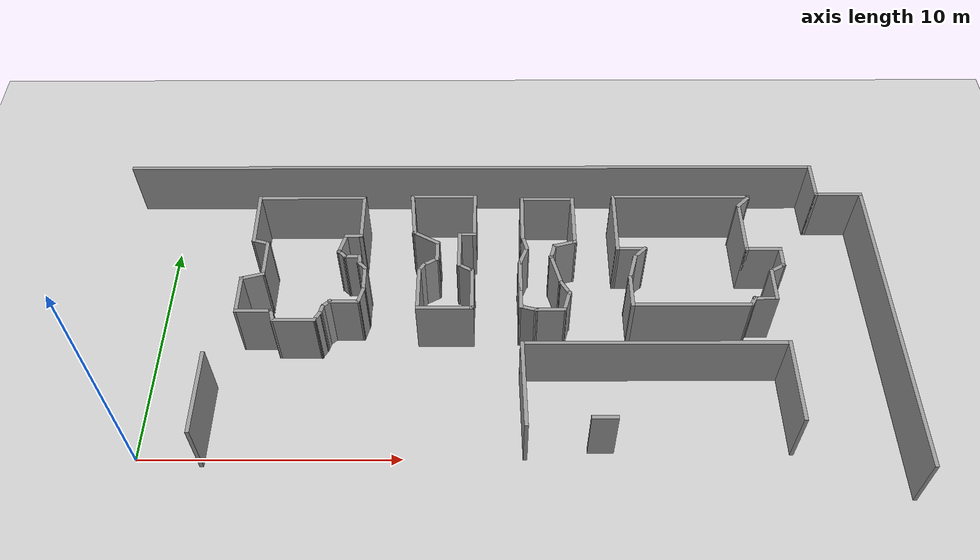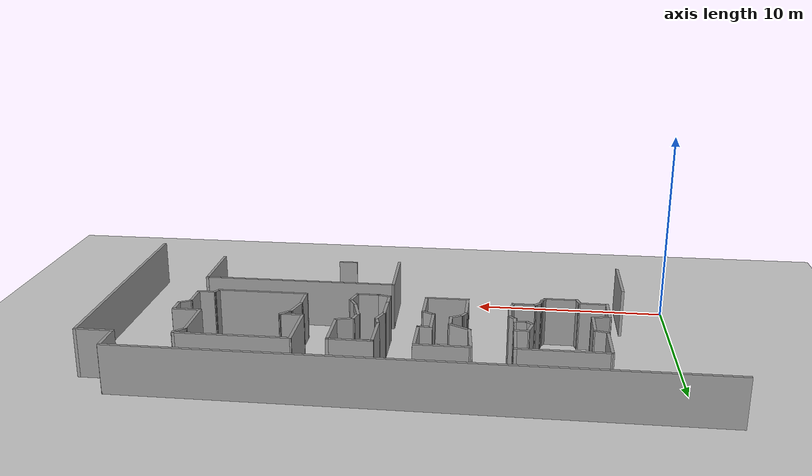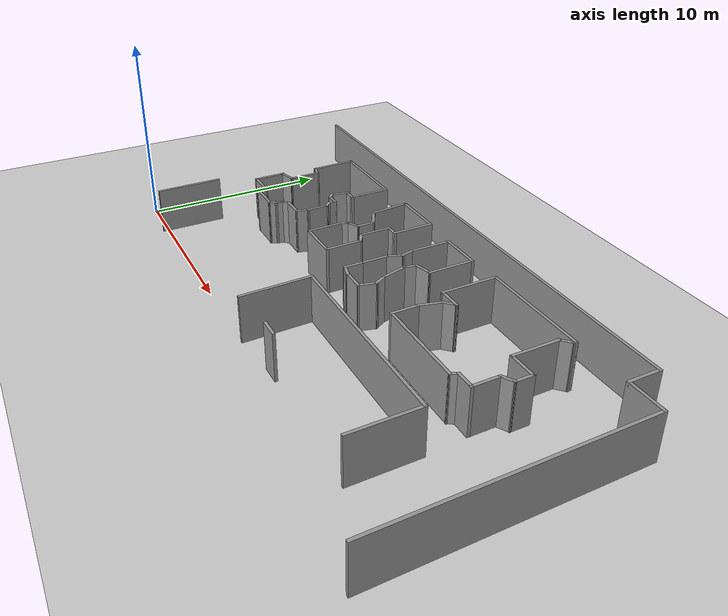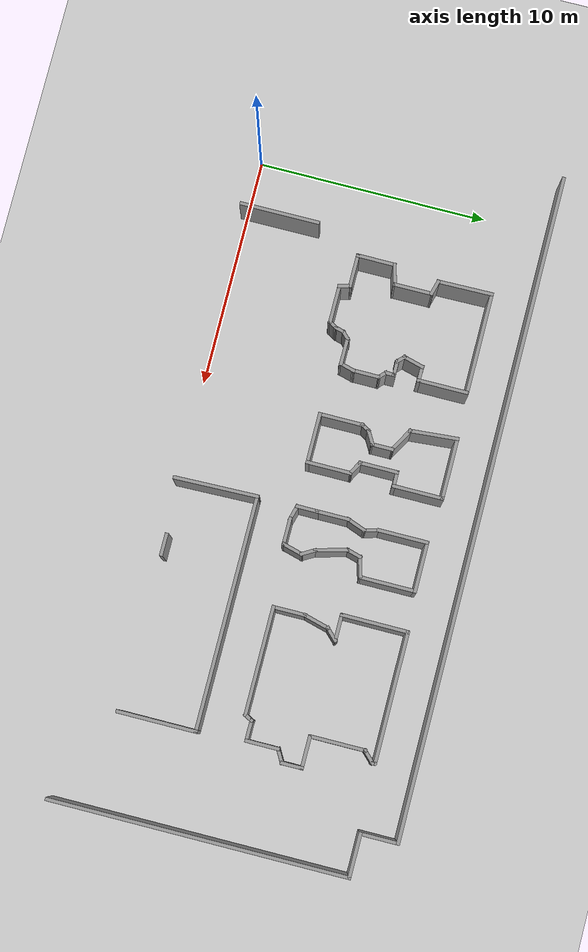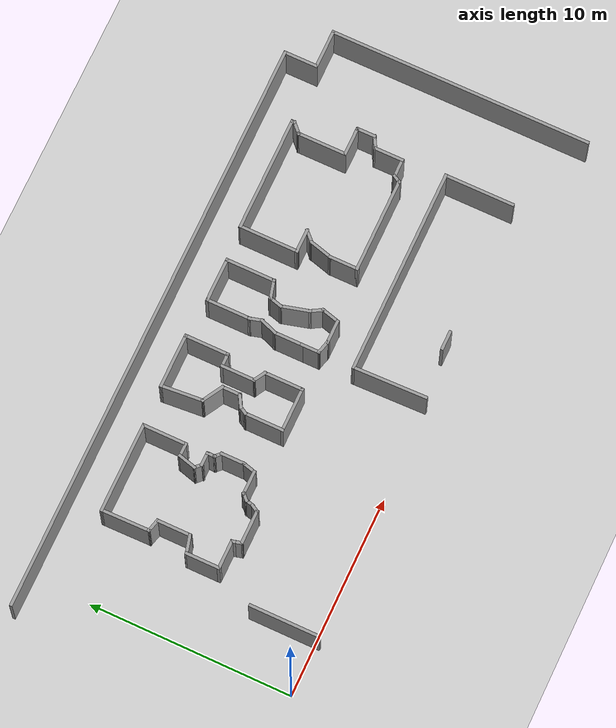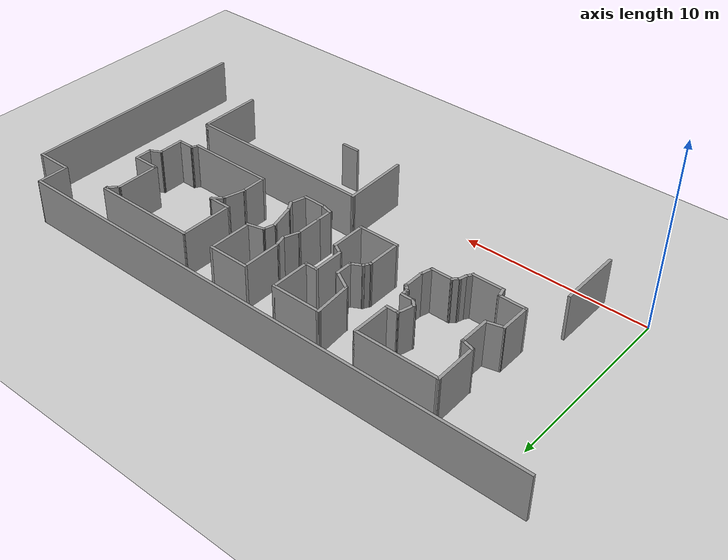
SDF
<sdf version="1.7">
 <world name="default">
  <model name="ground_plane">
   <static>1</static>
   <link name="link">
    <collision name="collision">
     <geometry><plane><normal>0 0 1</normal><size>100 100</size></plane></geometry>
     <surface>
      <contact><collide_bitmask>65535</collide_bitmask></contact>
      <friction><ode><mu>100</mu><mu2>50</mu2></ode></friction>
     </surface>
    </collision>
    <visual name="visual">
     <cast_shadows>0</cast_shadows>
     <geometry><plane><normal>0 0 1</normal><size>100 100</size></plane></geometry>
     <material>
      <script><uri>file://media/materials/scripts/gazebo.material</uri><name>Gazebo/Grey</name></script>
     </material>
    </visual>
   </link>
  </model>
  <model name="latest_world">
   <pose>-1.4911 -0.096187 0 0 -0 0</pose>
   <link name="Wall_2">
    <collision name="Wall_2_Collision">
     <geometry><box><size>29 0.15 2.5</size></box></geometry>
     <pose>0 0 1.25 0 -0 0</pose>
    </collision>
    <visual name="Wall_2_Visual">
     <pose>0 0 1.25 0 -0 0</pose>
     <geometry><box><size>29 0.15 2.5</size></box></geometry>
     <material>
      <script><uri>file://media/materials/scripts/gazebo.material</uri><name>Gazebo/Grey</name></script>
      <ambient>1 1 1 1</ambient>
     </material>
     <meta><layer>0</layer></meta>
    </visual>
    <pose>13.9801 12.9157 0 0 -0 0</pose>
   </link>
   <link name="Wall_3">
    <collision name="Wall_3_Collision">
     <geometry><box><size>1.75 0.15 2.5</size></box></geometry>
     <pose>0 0 1.25 0 -0 0</pose>
    </collision>
    <visual name="Wall_3_Visual">
     <pose>0 0 1.25 0 -0 0</pose>
     <geometry><box><size>1.75 0.15 2.5</size></box></geometry>
     <material>
      <script><uri>file://media/materials/scripts/gazebo.material</uri><name>Gazebo/Grey</name></script>
      <ambient>1 1 1 1</ambient>
     </material>
     <meta><layer>0</layer></meta>
    </visual>
    <pose>28.4051 12.1157 0 0 -0 -1.5708</pose>
   </link>
   <link name="Wall_305">
    <collision name="Wall_305_Collision">
     <geometry><box><size>3.5 0.15 2.5</size></box></geometry>
     <pose>0 0 1.25 0 -0 0</pose>
    </collision>
    <visual name="Wall_305_Visual">
     <pose>0 0 1.25 0 -0 0</pose>
     <geometry><box><size>3.5 0.15 2.5</size></box></geometry>
     <material>
      <script><uri>file://media/materials/scripts/gazebo.material</uri><name>Gazebo/Grey</name></script>
      <ambient>1 1 1 1</ambient>
     </material>
     <meta><layer>0</layer></meta>
    </visual>
    <pose>3.99517 1.57788 0 0 -0 1.5708</pose>
   </link>
   <link name="Wall_319">
    <collision name="Wall_319_Collision">
     <geometry><box><size>4.5 0.15 2.5</size></box></geometry>
     <pose>0 0 1.25 0 -0 0</pose>
    </collision>
    <visual name="Wall_319_Visual">
     <pose>0 0 1.25 0 -0 0</pose>
     <geometry><box><size>4.5 0.15 2.5</size></box></geometry>
     <material>
      <script><uri>file://media/materials/scripts/gazebo.material</uri><name>Gazebo/Grey</name></script>
      <ambient>1 1 1 1</ambient>
     </material>
     <meta><layer>0</layer></meta>
    </visual>
    <pose>7.33934 11.1509 0 0 -0 0</pose>
   </link>
   <link name="Wall_320">
    <collision name="Wall_320_Collision">
     <geometry><box><size>2.25 0.15 2.5</size></box></geometry>
     <pose>0 0 1.25 0 -0 0</pose>
    </collision>
    <visual name="Wall_320_Visual">
     <pose>0 0 1.25 0 -0 0</pose>
     <geometry><box><size>2.25 0.15 2.5</size></box></geometry>
     <material>
      <script><uri>file://media/materials/scripts/gazebo.material</uri><name>Gazebo/Grey</name></script>
      <ambient>1 1 1 1</ambient>
     </material>
     <meta><layer>0</layer></meta>
    </visual>
    <pose>9.51434 10.1009 0 0 -0 -1.5708</pose>
   </link>
   <link name="Wall_321">
    <collision name="Wall_321_Collision">
     <geometry><box><size>0.75 0.15 2.5</size></box></geometry>
     <pose>0 0 1.25 0 -0 0</pose>
    </collision>
    <visual name="Wall_321_Visual">
     <pose>0 0 1.25 0 -0 0</pose>
     <geometry><box><size>0.75 0.15 2.5</size></box></geometry>
     <material>
      <script><uri>file://media/materials/scripts/gazebo.material</uri><name>Gazebo/Grey</name></script>
      <ambient>1 1 1 1</ambient>
     </material>
     <meta><layer>0</layer></meta>
    </visual>
    <pose>9.21434 9.05093 0 0 -0 3.14159</pose>
   </link>
   <link name="Wall_322">
    <collision name="Wall_322_Collision">
     <geometry><box><size>1 0.15 2.5</size></box></geometry>
     <pose>0 0 1.25 0 -0 0</pose>
    </collision>
    <visual name="Wall_322_Visual">
     <pose>0 0 1.25 0 -0 0</pose>
     <geometry><box><size>1 0.15 2.5</size></box></geometry>
     <material>
      <script><uri>file://media/materials/scripts/gazebo.material</uri><name>Gazebo/Grey</name></script>
      <ambient>1 1 1 1</ambient>
     </material>
     <meta><layer>0</layer></meta>
    </visual>
    <pose>8.80434 8.64041 0 0 -0 -1.8326</pose>
   </link>
   <link name="Wall_323">
    <collision name="Wall_323_Collision">
     <geometry><box><size>0.5 0.15 2.5</size></box></geometry>
     <pose>0 0 1.25 0 -0 0</pose>
    </collision>
    <visual name="Wall_323_Visual">
     <pose>0 0 1.25 0 -0 0</pose>
     <geometry><box><size>0.5 0.15 2.5</size></box></geometry>
     <material>
      <script><uri>file://media/materials/scripts/gazebo.material</uri><name>Gazebo/Grey</name></script>
      <ambient>1 1 1 1</ambient>
     </material>
     <meta><layer>0</layer></meta>
    </visual>
    <pose>8.81809 8.10615 0 0 -0 -0.785398</pose>
   </link>
   <link name="Wall_324">
    <collision name="Wall_324_Collision">
     <geometry><box><size>0.75 0.15 2.5</size></box></geometry>
     <pose>0 0 1.25 0 -0 0</pose>
    </collision>
    <visual name="Wall_324_Visual">
     <pose>0 0 1.25 0 -0 0</pose>
     <geometry><box><size>0.75 0.15 2.5</size></box></geometry>
     <material>
      <script><uri>file://media/materials/scripts/gazebo.material</uri><name>Gazebo/Grey</name></script>
      <ambient>1 1 1 1</ambient>
     </material>
     <meta><layer>0</layer></meta>
    </visual>
    <pose>9.24183 7.98241 0 0 -0 0</pose>
   </link>
   <link name="Wall_325">
    <collision name="Wall_325_Collision">
     <geometry><box><size>0.5 0.15 2.5</size></box></geometry>
     <pose>0 0 1.25 0 -0 0</pose>
    </collision>
    <visual name="Wall_325_Visual">
     <pose>0 0 1.25 0 -0 0</pose>
     <geometry><box><size>0.5 0.15 2.5</size></box></geometry>
     <material>
      <script><uri>file://media/materials/scripts/gazebo.material</uri><name>Gazebo/Grey</name></script>
      <ambient>1 1 1 1</ambient>
     </material>
     <meta><layer>0</layer></meta>
    </visual>
    <pose>9.54183 7.80741 0 0 -0 -1.5708</pose>
   </link>
   <link name="Wall_326">
    <collision name="Wall_326_Collision">
     <geometry><box><size>0.5 0.15 2.5</size></box></geometry>
     <pose>0 0 1.25 0 -0 0</pose>
    </collision>
    <visual name="Wall_326_Visual">
     <pose>0 0 1.25 0 -0 0</pose>
     <geometry><box><size>0.5 0.15 2.5</size></box></geometry>
     <material>
      <script><uri>file://media/materials/scripts/gazebo.material</uri><name>Gazebo/Grey</name></script>
      <ambient>1 1 1 1</ambient>
     </material>
     <meta><layer>0</layer></meta>
    </visual>
    <pose>9.66557 7.50866 0 0 -0 -0.785398</pose>
   </link>
   <link name="Wall_327">
    <collision name="Wall_327_Collision">
     <geometry><box><size>1.25 0.15 2.5</size></box></geometry>
     <pose>0 0 1.25 0 -0 0</pose>
    </collision>
    <visual name="Wall_327_Visual">
     <pose>0 0 1.25 0 -0 0</pose>
     <geometry><box><size>1.25 0.15 2.5</size></box></geometry>
     <material>
      <script><uri>file://media/materials/scripts/gazebo.material</uri><name>Gazebo/Grey</name></script>
      <ambient>1 1 1 1</ambient>
     </material>
     <meta><layer>0</layer></meta>
    </visual>
    <pose>9.78932 6.83492 0 0 -0 -1.5708</pose>
   </link>
   <link name="Wall_328">
    <collision name="Wall_328_Collision">
     <geometry><box><size>0.75 0.15 2.5</size></box></geometry>
     <pose>0 0 1.25 0 -0 0</pose>
    </collision>
    <visual name="Wall_328_Visual">
     <pose>0 0 1.25 0 -0 0</pose>
     <geometry><box><size>0.75 0.15 2.5</size></box></geometry>
     <material>
      <script><uri>file://media/materials/scripts/gazebo.material</uri><name>Gazebo/Grey</name></script>
      <ambient>1 1 1 1</ambient>
     </material>
     <meta><layer>0</layer></meta>
    </visual>
    <pose>9.71167 5.99514 0 0 -0 -1.8326</pose>
   </link>
   <link name="Wall_329">
    <collision name="Wall_329_Collision">
     <geometry><box><size>1.25 0.15 2.5</size></box></geometry>
     <pose>0 0 1.25 0 -0 0</pose>
    </collision>
    <visual name="Wall_329_Visual">
     <pose>0 0 1.25 0 -0 0</pose>
     <geometry><box><size>1.25 0.15 2.5</size></box></geometry>
     <material>
      <script><uri>file://media/materials/scripts/gazebo.material</uri><name>Gazebo/Grey</name></script>
      <ambient>1 1 1 1</ambient>
     </material>
     <meta><layer>0</layer></meta>
    </visual>
    <pose>9.08403 5.70537 0 0 -0 3.14159</pose>
   </link>
   <link name="Wall_330">
    <collision name="Wall_330_Collision">
     <geometry><box><size>0.5 0.15 2.5</size></box></geometry>
     <pose>0 0 1.25 0 -0 0</pose>
    </collision>
    <visual name="Wall_330_Visual">
     <pose>0 0 1.25 0 -0 0</pose>
     <geometry><box><size>0.5 0.15 2.5</size></box></geometry>
     <material>
      <script><uri>file://media/materials/scripts/gazebo.material</uri><name>Gazebo/Grey</name></script>
      <ambient>1 1 1 1</ambient>
     </material>
     <meta><layer>0</layer></meta>
    </visual>
    <pose>8.41028 5.58162 0 0 -0 -2.35619</pose>
   </link>
   <link name="Wall_331">
    <collision name="Wall_331_Collision">
     <geometry><box><size>0.5 0.15 2.5</size></box></geometry>
     <pose>0 0 1.25 0 -0 0</pose>
    </collision>
    <visual name="Wall_331_Visual">
     <pose>0 0 1.25 0 -0 0</pose>
     <geometry><box><size>0.5 0.15 2.5</size></box></geometry>
     <material>
      <script><uri>file://media/materials/scripts/gazebo.material</uri><name>Gazebo/Grey</name></script>
      <ambient>1 1 1 1</ambient>
     </material>
     <meta><layer>0</layer></meta>
    </visual>
    <pose>8.24124 5.28884 0 0 -0 -1.8326</pose>
   </link>
   <link name="Wall_332">
    <collision name="Wall_332_Collision">
     <geometry><box><size>0.5 0.15 2.5</size></box></geometry>
     <pose>0 0 1.25 0 -0 0</pose>
    </collision>
    <visual name="Wall_332_Visual">
     <pose>0 0 1.25 0 -0 0</pose>
     <geometry><box><size>0.5 0.15 2.5</size></box></geometry>
     <material>
      <script><uri>file://media/materials/scripts/gazebo.material</uri><name>Gazebo/Grey</name></script>
      <ambient>1 1 1 1</ambient>
     </material>
     <meta><layer>0</layer></meta>
    </visual>
    <pose>8.10845 4.96825 0 0 -0 -2.0944</pose>
   </link>
   <link name="Wall_333">
    <collision name="Wall_333_Collision">
     <geometry><box><size>1.75 0.15 2.5</size></box></geometry>
     <pose>0 0 1.25 0 -0 0</pose>
    </collision>
    <visual name="Wall_333_Visual">
     <pose>0 0 1.25 0 -0 0</pose>
     <geometry><box><size>1.75 0.15 2.5</size></box></geometry>
     <material>
      <script><uri>file://media/materials/scripts/gazebo.material</uri><name>Gazebo/Grey</name></script>
      <ambient>1 1 1 1</ambient>
     </material>
     <meta><layer>0</layer></meta>
    </visual>
    <pose>7.22095 4.8167 0 0 -0 3.14159</pose>
   </link>
   <link name="Wall_334">
    <collision name="Wall_334_Collision">
     <geometry><box><size>0.5 0.15 2.5</size></box></geometry>
     <pose>0 0 1.25 0 -0 0</pose>
    </collision>
    <visual name="Wall_334_Visual">
     <pose>0 0 1.25 0 -0 0</pose>
     <geometry><box><size>0.5 0.15 2.5</size></box></geometry>
     <material>
      <script><uri>file://media/materials/scripts/gazebo.material</uri><name>Gazebo/Grey</name></script>
      <ambient>1 1 1 1</ambient>
     </material>
     <meta><layer>0</layer></meta>
    </visual>
    <pose>6.37566 4.98573 0 0 -0 1.8326</pose>
   </link>
   <link name="Wall_335">
    <collision name="Wall_335_Collision">
     <geometry><box><size>0.25 0.15 2.5</size></box></geometry>
     <pose>0 0 1.25 0 -0 0</pose>
    </collision>
    <visual name="Wall_335_Visual">
     <pose>0 0 1.25 0 -0 0</pose>
     <geometry><box><size>0.25 0.15 2.5</size></box></geometry>
     <material>
      <script><uri>file://media/materials/scripts/gazebo.material</uri><name>Gazebo/Grey</name></script>
      <ambient>1 1 1 1</ambient>
     </material>
     <meta><layer>0</layer></meta>
    </visual>
    <pose>6.31742 5.20307 0 0 -0 1.8326</pose>
   </link>
   <link name="Wall_336">
    <collision name="Wall_336_Collision">
     <geometry><box><size>1.5 0.15 2.5</size></box></geometry>
     <pose>0 0 1.25 0 -0 0</pose>
    </collision>
    <visual name="Wall_336_Visual">
     <pose>0 0 1.25 0 -0 0</pose>
     <geometry><box><size>1.5 0.15 2.5</size></box></geometry>
     <material>
      <script><uri>file://media/materials/scripts/gazebo.material</uri><name>Gazebo/Grey</name></script>
      <ambient>1 1 1 1</ambient>
     </material>
     <meta><layer>0</layer></meta>
    </visual>
    <pose>5.62948 5.25136 0 0 -0 3.14159</pose>
   </link>
   <link name="Wall_337">
    <collision name="Wall_337_Collision">
     <geometry><box><size>1.75 0.15 2.5</size></box></geometry>
     <pose>0 0 1.25 0 -0 0</pose>
    </collision>
    <visual name="Wall_337_Visual">
     <pose>0 0 1.25 0 -0 0</pose>
     <geometry><box><size>1.75 0.15 2.5</size></box></geometry>
     <material>
      <script><uri>file://media/materials/scripts/gazebo.material</uri><name>Gazebo/Grey</name></script>
      <ambient>1 1 1 1</ambient>
     </material>
     <meta><layer>0</layer></meta>
    </visual>
    <pose>4.95448 6.05136 0 0 -0 1.5708</pose>
   </link>
   <link name="Wall_338">
    <collision name="Wall_338_Collision">
     <geometry><box><size>1 0.15 2.5</size></box></geometry>
     <pose>0 0 1.25 0 -0 0</pose>
    </collision>
    <visual name="Wall_338_Visual">
     <pose>0 0 1.25 0 -0 0</pose>
     <geometry><box><size>1 0.15 2.5</size></box></geometry>
     <material>
      <script><uri>file://media/materials/scripts/gazebo.material</uri><name>Gazebo/Grey</name></script>
      <ambient>1 1 1 1</ambient>
     </material>
     <meta><layer>0</layer></meta>
    </visual>
    <pose>5.365 6.96136 0 0 -0 0.261799</pose>
   </link>
   <link name="Wall_339">
    <collision name="Wall_339_Collision">
     <geometry><box><size>1.75 0.15 2.5</size></box></geometry>
     <pose>0 0 1.25 0 -0 0</pose>
    </collision>
    <visual name="Wall_339_Visual">
     <pose>0 0 1.25 0 -0 0</pose>
     <geometry><box><size>1.75 0.15 2.5</size></box></geometry>
     <material>
      <script><uri>file://media/materials/scripts/gazebo.material</uri><name>Gazebo/Grey</name></script>
      <ambient>1 1 1 1</ambient>
     </material>
     <meta><layer>0</layer></meta>
    </visual>
    <pose>5.77552 7.87136 0 0 -0 1.5708</pose>
   </link>
   <link name="Wall_340">
    <collision name="Wall_340_Collision">
     <geometry><box><size>0.75 0.15 2.5</size></box></geometry>
     <pose>0 0 1.25 0 -0 0</pose>
    </collision>
    <visual name="Wall_340_Visual">
     <pose>0 0 1.25 0 -0 0</pose>
     <geometry><box><size>0.75 0.15 2.5</size></box></geometry>
     <material>
      <script><uri>file://media/materials/scripts/gazebo.material</uri><name>Gazebo/Grey</name></script>
      <ambient>1 1 1 1</ambient>
     </material>
     <meta><layer>0</layer></meta>
    </visual>
    <pose>5.48574 8.749 0 0 -0 2.87979</pose>
   </link>
   <link name="Wall_341">
    <collision name="Wall_341_Collision">
     <geometry><box><size>2.4745 0.15 2.5</size></box></geometry>
     <pose>0 0 1.25 0 -0 0</pose>
    </collision>
    <visual name="Wall_341_Visual">
     <pose>0 0 1.25 0 -0 0</pose>
     <geometry><box><size>2.4745 0.15 2.5</size></box></geometry>
     <material>
      <script><uri>file://media/materials/scripts/gazebo.material</uri><name>Gazebo/Grey</name></script>
      <ambient>1 1 1 1</ambient>
     </material>
     <meta><layer>0</layer></meta>
    </visual>
    <pose>5.18015 9.98879 0 0 -0 1.5844</pose>
   </link>
   <link name="Wall_343">
    <collision name="Wall_343_Collision">
     <geometry><box><size>2.75 0.15 2.5</size></box></geometry>
     <pose>0 0 1.25 0 -0 0</pose>
    </collision>
    <visual name="Wall_343_Visual">
     <pose>0 0 1.25 0 -0 0</pose>
     <geometry><box><size>2.75 0.15 2.5</size></box></geometry>
     <material>
      <script><uri>file://media/materials/scripts/gazebo.material</uri><name>Gazebo/Grey</name></script>
      <ambient>1 1 1 1</ambient>
     </material>
     <meta><layer>0</layer></meta>
    </visual>
    <pose>12.8177 11.227 0 0 -0 0</pose>
   </link>
   <link name="Wall_344">
    <collision name="Wall_344_Collision">
     <geometry><box><size>2.25 0.15 2.5</size></box></geometry>
     <pose>0 0 1.25 0 -0 0</pose>
    </collision>
    <visual name="Wall_344_Visual">
     <pose>0 0 1.25 0 -0 0</pose>
     <geometry><box><size>2.25 0.15 2.5</size></box></geometry>
     <material>
      <script><uri>file://media/materials/scripts/gazebo.material</uri><name>Gazebo/Grey</name></script>
      <ambient>1 1 1 1</ambient>
     </material>
     <meta><layer>0</layer></meta>
    </visual>
    <pose>14.1177 10.177 0 0 -0 -1.5708</pose>
   </link>
   <link name="Wall_345">
    <collision name="Wall_345_Collision">
     <geometry><box><size>0.75 0.15 2.5</size></box></geometry>
     <pose>0 0 1.25 0 -0 0</pose>
    </collision>
    <visual name="Wall_345_Visual">
     <pose>0 0 1.25 0 -0 0</pose>
     <geometry><box><size>0.75 0.15 2.5</size></box></geometry>
     <material>
      <script><uri>file://media/materials/scripts/gazebo.material</uri><name>Gazebo/Grey</name></script>
      <ambient>1 1 1 1</ambient>
     </material>
     <meta><layer>0</layer></meta>
    </visual>
    <pose>13.8177 9.12701 0 0 -0 3.14159</pose>
   </link>
   <link name="Wall_346">
    <collision name="Wall_346_Collision">
     <geometry><box><size>1.75 0.15 2.5</size></box></geometry>
     <pose>0 0 1.25 0 -0 0</pose>
    </collision>
    <visual name="Wall_346_Visual">
     <pose>0 0 1.25 0 -0 0</pose>
     <geometry><box><size>1.75 0.15 2.5</size></box></geometry>
     <material>
      <script><uri>file://media/materials/scripts/gazebo.material</uri><name>Gazebo/Grey</name></script>
      <ambient>1 1 1 1</ambient>
     </material>
     <meta><layer>0</layer></meta>
    </visual>
    <pose>13.5177 8.327 0 0 -0 -1.5708</pose>
   </link>
   <link name="Wall_347">
    <collision name="Wall_347_Collision">
     <geometry><box><size>0.75 0.15 2.5</size></box></geometry>
     <pose>0 0 1.25 0 -0 0</pose>
    </collision>
    <visual name="Wall_347_Visual">
     <pose>0 0 1.25 0 -0 0</pose>
     <geometry><box><size>0.75 0.15 2.5</size></box></geometry>
     <material>
      <script><uri>file://media/materials/scripts/gazebo.material</uri><name>Gazebo/Grey</name></script>
      <ambient>1 1 1 1</ambient>
     </material>
     <meta><layer>0</layer></meta>
    </visual>
    <pose>13.7775 7.377 0 0 -0 -0.523599</pose>
   </link>
   <link name="Wall_348">
    <collision name="Wall_348_Collision">
     <geometry><box><size>2 0.15 2.5</size></box></geometry>
     <pose>0 0 1.25 0 -0 0</pose>
    </collision>
    <visual name="Wall_348_Visual">
     <pose>0 0 1.25 0 -0 0</pose>
     <geometry><box><size>2 0.15 2.5</size></box></geometry>
     <material>
      <script><uri>file://media/materials/scripts/gazebo.material</uri><name>Gazebo/Grey</name></script>
      <ambient>1 1 1 1</ambient>
     </material>
     <meta><layer>0</layer></meta>
    </visual>
    <pose>14.0373 6.30201 0 0 -0 -1.5708</pose>
   </link>
   <link name="Wall_349">
    <collision name="Wall_349_Collision">
     <geometry><box><size>2.25 0.15 2.5</size></box></geometry>
     <pose>0 0 1.25 0 -0 0</pose>
    </collision>
    <visual name="Wall_349_Visual">
     <pose>0 0 1.25 0 -0 0</pose>
     <geometry><box><size>2.25 0.15 2.5</size></box></geometry>
     <material>
      <script><uri>file://media/materials/scripts/gazebo.material</uri><name>Gazebo/Grey</name></script>
      <ambient>1 1 1 1</ambient>
     </material>
     <meta><layer>0</layer></meta>
    </visual>
    <pose>12.9873 5.377 0 0 -0 3.14159</pose>
   </link>
   <link name="Wall_350">
    <collision name="Wall_350_Collision">
     <geometry><box><size>2 0.15 2.5</size></box></geometry>
     <pose>0 0 1.25 0 -0 0</pose>
    </collision>
    <visual name="Wall_350_Visual">
     <pose>0 0 1.25 0 -0 0</pose>
     <geometry><box><size>2 0.15 2.5</size></box></geometry>
     <material>
      <script><uri>file://media/materials/scripts/gazebo.material</uri><name>Gazebo/Grey</name></script>
      <ambient>1 1 1 1</ambient>
     </material>
     <meta><layer>0</layer></meta>
    </visual>
    <pose>11.9373 6.30201 0 0 -0 1.5708</pose>
   </link>
   <link name="Wall_351">
    <collision name="Wall_351_Collision">
     <geometry><box><size>0.5 0.15 2.5</size></box></geometry>
     <pose>0 0 1.25 0 -0 0</pose>
    </collision>
    <visual name="Wall_351_Visual">
     <pose>0 0 1.25 0 -0 0</pose>
     <geometry><box><size>0.5 0.15 2.5</size></box></geometry>
     <material>
      <script><uri>file://media/materials/scripts/gazebo.material</uri><name>Gazebo/Grey</name></script>
      <ambient>1 1 1 1</ambient>
     </material>
     <meta><layer>0</layer></meta>
    </visual>
    <pose>12.0248 7.37856 0 0 -0 1.0472</pose>
   </link>
   <link name="Wall_352">
    <collision name="Wall_352_Collision">
     <geometry><box><size>0.75 0.15 2.5</size></box></geometry>
     <pose>0 0 1.25 0 -0 0</pose>
    </collision>
    <visual name="Wall_352_Visual">
     <pose>0 0 1.25 0 -0 0</pose>
     <geometry><box><size>0.75 0.15 2.5</size></box></geometry>
     <material>
      <script><uri>file://media/materials/scripts/gazebo.material</uri><name>Gazebo/Grey</name></script>
      <ambient>1 1 1 1</ambient>
     </material>
     <meta><layer>0</layer></meta>
    </visual>
    <pose>12.3722 7.68011 0 0 -0 0.523599</pose>
   </link>
   <link name="Wall_353">
    <collision name="Wall_353_Collision">
     <geometry><box><size>1 0.15 2.5</size></box></geometry>
     <pose>0 0 1.25 0 -0 0</pose>
    </collision>
    <visual name="Wall_353_Visual">
     <pose>0 0 1.25 0 -0 0</pose>
     <geometry><box><size>1 0.15 2.5</size></box></geometry>
     <material>
      <script><uri>file://media/materials/scripts/gazebo.material</uri><name>Gazebo/Grey</name></script>
      <ambient>1 1 1 1</ambient>
     </material>
     <meta><layer>0</layer></meta>
    </visual>
    <pose>12.632 8.25511 0 0 -0 1.5708</pose>
   </link>
   <link name="Wall_354">
    <collision name="Wall_354_Collision">
     <geometry><box><size>1.25 0.15 2.5</size></box></geometry>
     <pose>0 0 1.25 0 -0 0</pose>
    </collision>
    <visual name="Wall_354_Visual">
     <pose>0 0 1.25 0 -0 0</pose>
     <geometry><box><size>1.25 0.15 2.5</size></box></geometry>
     <material>
      <script><uri>file://media/materials/scripts/gazebo.material</uri><name>Gazebo/Grey</name></script>
      <ambient>1 1 1 1</ambient>
     </material>
     <meta><layer>0</layer></meta>
    </visual>
    <pose>12.1556 8.95511 0 0 -0 2.61799</pose>
   </link>
   <link name="Wall_355">
    <collision name="Wall_355_Collision">
     <geometry><box><size>2.15342 0.15 2.5</size></box></geometry>
     <pose>0 0 1.25 0 -0 0</pose>
    </collision>
    <visual name="Wall_355_Visual">
     <pose>0 0 1.25 0 -0 0</pose>
     <geometry><box><size>2.15342 0.15 2.5</size></box></geometry>
     <material>
      <script><uri>file://media/materials/scripts/gazebo.material</uri><name>Gazebo/Grey</name></script>
      <ambient>1 1 1 1</ambient>
     </material>
     <meta><layer>0</layer></meta>
    </visual>
    <pose>11.5985 10.2286 0 0 -0 1.65155</pose>
   </link>
   <link name="Wall_357">
    <collision name="Wall_357_Collision">
     <geometry><box><size>1.5 0.15 2.5</size></box></geometry>
     <pose>0 0 1.25 0 -0 0</pose>
    </collision>
    <visual name="Wall_357_Visual">
     <pose>0 0 1.25 0 -0 0</pose>
     <geometry><box><size>1.5 0.15 2.5</size></box></geometry>
     <material>
      <script><uri>file://media/materials/scripts/gazebo.material</uri><name>Gazebo/Grey</name></script>
      <ambient>1 1 1 1</ambient>
     </material>
     <meta><layer>0</layer></meta>
    </visual>
    <pose>15.9449 6.95273 0 0 -0 -1.5708</pose>
   </link>
   <link name="Wall_358">
    <collision name="Wall_358_Collision">
     <geometry><box><size>1 0.15 2.5</size></box></geometry>
     <pose>0 0 1.25 0 -0 0</pose>
    </collision>
    <visual name="Wall_358_Visual">
     <pose>0 0 1.25 0 -0 0</pose>
     <geometry><box><size>1 0.15 2.5</size></box></geometry>
     <material>
      <script><uri>file://media/materials/scripts/gazebo.material</uri><name>Gazebo/Grey</name></script>
      <ambient>1 1 1 1</ambient>
     </material>
     <meta><layer>0</layer></meta>
    </visual>
    <pose>15.9449 5.85273 0 0 -0 -1.5708</pose>
   </link>
   <link name="Wall_359">
    <collision name="Wall_359_Collision">
     <geometry><box><size>0.75 0.15 2.5</size></box></geometry>
     <pose>0 0 1.25 0 -0 0</pose>
    </collision>
    <visual name="Wall_359_Visual">
     <pose>0 0 1.25 0 -0 0</pose>
     <geometry><box><size>0.75 0.15 2.5</size></box></geometry>
     <material>
      <script><uri>file://media/materials/scripts/gazebo.material</uri><name>Gazebo/Grey</name></script>
      <ambient>1 1 1 1</ambient>
     </material>
     <meta><layer>0</layer></meta>
    </visual>
    <pose>16.2347 5.35009 0 0 -0 -0.261799</pose>
   </link>
   <link name="Wall_360">
    <collision name="Wall_360_Collision">
     <geometry><box><size>1.25 0.15 2.5</size></box></geometry>
     <pose>0 0 1.25 0 -0 0</pose>
    </collision>
    <visual name="Wall_360_Visual">
     <pose>0 0 1.25 0 -0 0</pose>
     <geometry><box><size>1.25 0.15 2.5</size></box></geometry>
     <material>
      <script><uri>file://media/materials/scripts/gazebo.material</uri><name>Gazebo/Grey</name></script>
      <ambient>1 1 1 1</ambient>
     </material>
     <meta><layer>0</layer></meta>
    </visual>
    <pose>17.0744 5.27244 0 0 -0 0</pose>
   </link>
   <link name="Wall_361">
    <collision name="Wall_361_Collision">
     <geometry><box><size>1 0.15 2.5</size></box></geometry>
     <pose>0 0 1.25 0 -0 0</pose>
    </collision>
    <visual name="Wall_361_Visual">
     <pose>0 0 1.25 0 -0 0</pose>
     <geometry><box><size>1 0.15 2.5</size></box></geometry>
     <material>
      <script><uri>file://media/materials/scripts/gazebo.material</uri><name>Gazebo/Grey</name></script>
      <ambient>1 1 1 1</ambient>
     </material>
     <meta><layer>0</layer></meta>
    </visual>
    <pose>17.7344 5.68296 0 0 -0 1.309</pose>
   </link>
   <link name="Wall_362">
    <collision name="Wall_362_Collision">
     <geometry><box><size>0.75 0.15 2.5</size></box></geometry>
     <pose>0 0 1.25 0 -0 0</pose>
    </collision>
    <visual name="Wall_362_Visual">
     <pose>0 0 1.25 0 -0 0</pose>
     <geometry><box><size>0.75 0.15 2.5</size></box></geometry>
     <material>
      <script><uri>file://media/materials/scripts/gazebo.material</uri><name>Gazebo/Grey</name></script>
      <ambient>1 1 1 1</ambient>
     </material>
     <meta><layer>0</layer></meta>
    </visual>
    <pose>17.6944 6.35329 0 0 -0 2.0944</pose>
   </link>
   <link name="Wall_363">
    <collision name="Wall_363_Collision">
     <geometry><box><size>1.5 0.15 2.5</size></box></geometry>
     <pose>0 0 1.25 0 -0 0</pose>
    </collision>
    <visual name="Wall_363_Visual">
     <pose>0 0 1.25 0 -0 0</pose>
     <geometry><box><size>1.5 0.15 2.5</size></box></geometry>
     <material>
      <script><uri>file://media/materials/scripts/gazebo.material</uri><name>Gazebo/Grey</name></script>
      <ambient>1 1 1 1</ambient>
     </material>
     <meta><layer>0</layer></meta>
    </visual>
    <pose>17.3697 7.26509 0 0 -0 1.8326</pose>
   </link>
   <link name="Wall_364">
    <collision name="Wall_364_Collision">
     <geometry><box><size>0.75 0.15 2.5</size></box></geometry>
     <pose>0 0 1.25 0 -0 0</pose>
    </collision>
    <visual name="Wall_364_Visual">
     <pose>0 0 1.25 0 -0 0</pose>
     <geometry><box><size>0.75 0.15 2.5</size></box></geometry>
     <material>
      <script><uri>file://media/materials/scripts/gazebo.material</uri><name>Gazebo/Grey</name></script>
      <ambient>1 1 1 1</ambient>
     </material>
     <meta><layer>0</layer></meta>
    </visual>
    <pose>17.2727 8.20687 0 0 -0 1.309</pose>
   </link>
   <link name="Wall_365">
    <collision name="Wall_365_Collision">
     <geometry><box><size>1 0.15 2.5</size></box></geometry>
     <pose>0 0 1.25 0 -0 0</pose>
    </collision>
    <visual name="Wall_365_Visual">
     <pose>0 0 1.25 0 -0 0</pose>
     <geometry><box><size>1 0.15 2.5</size></box></geometry>
     <material>
      <script><uri>file://media/materials/scripts/gazebo.material</uri><name>Gazebo/Grey</name></script>
      <ambient>1 1 1 1</ambient>
     </material>
     <meta><layer>0</layer></meta>
    </visual>
    <pose>17.7608 8.60665 0 0 -0 0.261799</pose>
   </link>
   <link name="Wall_366">
    <collision name="Wall_366_Collision">
     <geometry><box><size>2.5 0.15 2.5</size></box></geometry>
     <pose>0 0 1.25 0 -0 0</pose>
    </collision>
    <visual name="Wall_366_Visual">
     <pose>0 0 1.25 0 -0 0</pose>
     <geometry><box><size>2.5 0.15 2.5</size></box></geometry>
     <material>
      <script><uri>file://media/materials/scripts/gazebo.material</uri><name>Gazebo/Grey</name></script>
      <ambient>1 1 1 1</ambient>
     </material>
     <meta><layer>0</layer></meta>
    </visual>
    <pose>18.1713 9.89165 0 0 -0 1.5708</pose>
   </link>
   <link name="Wall_367">
    <collision name="Wall_367_Collision">
     <geometry><box><size>2.25 0.15 2.5</size></box></geometry>
     <pose>0 0 1.25 0 -0 0</pose>
    </collision>
    <visual name="Wall_367_Visual">
     <pose>0 0 1.25 0 -0 0</pose>
     <geometry><box><size>2.25 0.15 2.5</size></box></geometry>
     <material>
      <script><uri>file://media/materials/scripts/gazebo.material</uri><name>Gazebo/Grey</name></script>
      <ambient>1 1 1 1</ambient>
     </material>
     <meta><layer>0</layer></meta>
    </visual>
    <pose>17.1213 11.0666 0 0 -0 3.14159</pose>
   </link>
   <link name="Wall_368">
    <collision name="Wall_368_Collision">
     <geometry><box><size>2.25 0.15 2.5</size></box></geometry>
     <pose>0 0 1.25 0 -0 0</pose>
    </collision>
    <visual name="Wall_368_Visual">
     <pose>0 0 1.25 0 -0 0</pose>
     <geometry><box><size>2.25 0.15 2.5</size></box></geometry>
     <material>
      <script><uri>file://media/materials/scripts/gazebo.material</uri><name>Gazebo/Grey</name></script>
      <ambient>1 1 1 1</ambient>
     </material>
     <meta><layer>0</layer></meta>
    </visual>
    <pose>16.0713 10.0166 0 0 -0 -1.5708</pose>
   </link>
   <link name="Wall_369">
    <collision name="Wall_369_Collision">
     <geometry><box><size>0.75 0.15 2.5</size></box></geometry>
     <pose>0 0 1.25 0 -0 0</pose>
    </collision>
    <visual name="Wall_369_Visual">
     <pose>0 0 1.25 0 -0 0</pose>
     <geometry><box><size>0.75 0.15 2.5</size></box></geometry>
     <material>
      <script><uri>file://media/materials/scripts/gazebo.material</uri><name>Gazebo/Grey</name></script>
      <ambient>1 1 1 1</ambient>
     </material>
     <meta><layer>0</layer></meta>
    </visual>
    <pose>16.149 8.67687 0 0 -0 -1.309</pose>
   </link>
   <link name="Wall_370">
    <collision name="Wall_370_Collision">
     <geometry><box><size>0.959947 0.15 2.5</size></box></geometry>
     <pose>0 0 1.25 0 -0 0</pose>
    </collision>
    <visual name="Wall_370_Visual">
     <pose>0 0 1.25 0 -0 0</pose>
     <geometry><box><size>0.959947 0.15 2.5</size></box></geometry>
     <material>
      <script><uri>file://media/materials/scripts/gazebo.material</uri><name>Gazebo/Grey</name></script>
      <ambient>1 1 1 1</ambient>
     </material>
     <meta><layer>0</layer></meta>
    </visual>
    <pose>16.0858 8.00741 0 0 -0 -1.92611</pose>
   </link>
   <link name="Wall_372">
    <collision name="Wall_372_Collision">
     <geometry><box><size>5.75 0.15 2.5</size></box></geometry>
     <pose>0 0 1.25 0 -0 0</pose>
    </collision>
    <visual name="Wall_372_Visual">
     <pose>0 0 1.25 0 -0 0</pose>
     <geometry><box><size>5.75 0.15 2.5</size></box></geometry>
     <material>
      <script><uri>file://media/materials/scripts/gazebo.material</uri><name>Gazebo/Grey</name></script>
      <ambient>1 1 1 1</ambient>
     </material>
     <meta><layer>0</layer></meta>
    </visual>
    <pose>22.6914 11.1934 0 0 -0 0</pose>
   </link>
   <link name="Wall_373">
    <collision name="Wall_373_Collision">
     <geometry><box><size>0.25 0.15 2.5</size></box></geometry>
     <pose>0 0 1.25 0 -0 0</pose>
    </collision>
    <visual name="Wall_373_Visual">
     <pose>0 0 1.25 0 -0 0</pose>
     <geometry><box><size>0.25 0.15 2.5</size></box></geometry>
     <material>
      <script><uri>file://media/materials/scripts/gazebo.material</uri><name>Gazebo/Grey</name></script>
      <ambient>1 1 1 1</ambient>
     </material>
     <meta><layer>0</layer></meta>
    </visual>
    <pose>25.4914 11.1434 0 0 -0 -1.5708</pose>
   </link>
   <link name="Wall_374">
    <collision name="Wall_374_Collision">
     <geometry><box><size>0.75 0.15 2.5</size></box></geometry>
     <pose>0 0 1.25 0 -0 0</pose>
    </collision>
    <visual name="Wall_374_Visual">
     <pose>0 0 1.25 0 -0 0</pose>
     <geometry><box><size>0.75 0.15 2.5</size></box></geometry>
     <material>
      <script><uri>file://media/materials/scripts/gazebo.material</uri><name>Gazebo/Grey</name></script>
      <ambient>1 1 1 1</ambient>
     </material>
     <meta><layer>0</layer></meta>
    </visual>
    <pose>25.2792 10.8813 0 0 -0 -2.35619</pose>
   </link>
   <link name="Wall_375">
    <collision name="Wall_375_Collision">
     <geometry><box><size>2.5 0.15 2.5</size></box></geometry>
     <pose>0 0 1.25 0 -0 0</pose>
    </collision>
    <visual name="Wall_375_Visual">
     <pose>0 0 1.25 0 -0 0</pose>
     <geometry><box><size>2.5 0.15 2.5</size></box></geometry>
     <material>
      <script><uri>file://media/materials/scripts/gazebo.material</uri><name>Gazebo/Grey</name></script>
      <ambient>1 1 1 1</ambient>
     </material>
     <meta><layer>0</layer></meta>
    </visual>
    <pose>25.0671 9.49415 0 0 -0 -1.5708</pose>
   </link>
   <link name="Wall_376">
    <collision name="Wall_376_Collision">
     <geometry><box><size>1.5 0.15 2.5</size></box></geometry>
     <pose>0 0 1.25 0 -0 0</pose>
    </collision>
    <visual name="Wall_376_Visual">
     <pose>0 0 1.25 0 -0 0</pose>
     <geometry><box><size>1.5 0.15 2.5</size></box></geometry>
     <material>
      <script><uri>file://media/materials/scripts/gazebo.material</uri><name>Gazebo/Grey</name></script>
      <ambient>1 1 1 1</ambient>
     </material>
     <meta><layer>0</layer></meta>
    </visual>
    <pose>25.7421 8.31915 0 0 -0 0</pose>
   </link>
   <link name="Wall_377">
    <collision name="Wall_377_Collision">
     <geometry><box><size>1 0.15 2.5</size></box></geometry>
     <pose>0 0 1.25 0 -0 0</pose>
    </collision>
    <visual name="Wall_377_Visual">
     <pose>0 0 1.25 0 -0 0</pose>
     <geometry><box><size>1 0.15 2.5</size></box></geometry>
     <material>
      <script><uri>file://media/materials/scripts/gazebo.material</uri><name>Gazebo/Grey</name></script>
      <ambient>1 1 1 1</ambient>
     </material>
     <meta><layer>0</layer></meta>
    </visual>
    <pose>26.4171 7.89415 0 0 -0 -1.5708</pose>
   </link>
   <link name="Wall_378">
    <collision name="Wall_378_Collision">
     <geometry><box><size>0.75 0.15 2.5</size></box></geometry>
     <pose>0 0 1.25 0 -0 0</pose>
    </collision>
    <visual name="Wall_378_Visual">
     <pose>0 0 1.25 0 -0 0</pose>
     <geometry><box><size>0.75 0.15 2.5</size></box></geometry>
     <material>
      <script><uri>file://media/materials/scripts/gazebo.material</uri><name>Gazebo/Grey</name></script>
      <ambient>1 1 1 1</ambient>
     </material>
     <meta><layer>0</layer></meta>
    </visual>
    <pose>26.1573 7.31915 0 0 -0 -2.61799</pose>
   </link>
   <link name="Wall_379">
    <collision name="Wall_379_Collision">
     <geometry><box><size>1.5 0.15 2.5</size></box></geometry>
     <pose>0 0 1.25 0 -0 0</pose>
    </collision>
    <visual name="Wall_379_Visual">
     <pose>0 0 1.25 0 -0 0</pose>
     <geometry><box><size>1.5 0.15 2.5</size></box></geometry>
     <material>
      <script><uri>file://media/materials/scripts/gazebo.material</uri><name>Gazebo/Grey</name></script>
      <ambient>1 1 1 1</ambient>
     </material>
     <meta><layer>0</layer></meta>
    </visual>
    <pose>25.8975 6.49415 0 0 -0 -1.5708</pose>
   </link>
   <link name="Wall_380">
    <collision name="Wall_380_Collision">
     <geometry><box><size>1 0.15 2.5</size></box></geometry>
     <pose>0 0 1.25 0 -0 0</pose>
    </collision>
    <visual name="Wall_380_Visual">
     <pose>0 0 1.25 0 -0 0</pose>
     <geometry><box><size>1 0.15 2.5</size></box></geometry>
     <material>
      <script><uri>file://media/materials/scripts/gazebo.material</uri><name>Gazebo/Grey</name></script>
      <ambient>1 1 1 1</ambient>
     </material>
     <meta><layer>0</layer></meta>
    </visual>
    <pose>25.4725 5.81915 0 0 -0 3.14159</pose>
   </link>
   <link name="Wall_381">
    <collision name="Wall_381_Collision">
     <geometry><box><size>0.5 0.15 2.5</size></box></geometry>
     <pose>0 0 1.25 0 -0 0</pose>
    </collision>
    <visual name="Wall_381_Visual">
     <pose>0 0 1.25 0 -0 0</pose>
     <geometry><box><size>0.5 0.15 2.5</size></box></geometry>
     <material>
      <script><uri>file://media/materials/scripts/gazebo.material</uri><name>Gazebo/Grey</name></script>
      <ambient>1 1 1 1</ambient>
     </material>
     <meta><layer>0</layer></meta>
    </visual>
    <pose>24.96 5.66759 0 0 -0 -2.0944</pose>
   </link>
   <link name="Wall_382">
    <collision name="Wall_382_Collision">
     <geometry><box><size>4.75 0.15 2.5</size></box></geometry>
     <pose>0 0 1.25 0 -0 0</pose>
    </collision>
    <visual name="Wall_382_Visual">
     <pose>0 0 1.25 0 -0 0</pose>
     <geometry><box><size>4.75 0.15 2.5</size></box></geometry>
     <material>
      <script><uri>file://media/materials/scripts/gazebo.material</uri><name>Gazebo/Grey</name></script>
      <ambient>1 1 1 1</ambient>
     </material>
     <meta><layer>0</layer></meta>
    </visual>
    <pose>22.5725 5.51604 0 0 -0 3.14159</pose>
   </link>
   <link name="Wall_383">
    <collision name="Wall_383_Collision">
     <geometry><box><size>1.5 0.15 2.5</size></box></geometry>
     <pose>0 0 1.25 0 -0 0</pose>
    </collision>
    <visual name="Wall_383_Visual">
     <pose>0 0 1.25 0 -0 0</pose>
     <geometry><box><size>1.5 0.15 2.5</size></box></geometry>
     <material>
      <script><uri>file://media/materials/scripts/gazebo.material</uri><name>Gazebo/Grey</name></script>
      <ambient>1 1 1 1</ambient>
     </material>
     <meta><layer>0</layer></meta>
    </visual>
    <pose>20.2725 6.19104 0 0 -0 1.5708</pose>
   </link>
   <link name="Wall_384">
    <collision name="Wall_384_Collision">
     <geometry><box><size>1.25 0.15 2.5</size></box></geometry>
     <pose>0 0 1.25 0 -0 0</pose>
    </collision>
    <visual name="Wall_384_Visual">
     <pose>0 0 1.25 0 -0 0</pose>
     <geometry><box><size>1.25 0.15 2.5</size></box></geometry>
     <material>
      <script><uri>file://media/materials/scripts/gazebo.material</uri><name>Gazebo/Grey</name></script>
      <ambient>1 1 1 1</ambient>
     </material>
     <meta><layer>0</layer></meta>
    </visual>
    <pose>20.4148 7.3973 0 0 -0 1.309</pose>
   </link>
   <link name="Wall_385">
    <collision name="Wall_385_Collision">
     <geometry><box><size>0.75 0.15 2.5</size></box></geometry>
     <pose>0 0 1.25 0 -0 0</pose>
    </collision>
    <visual name="Wall_385_Visual">
     <pose>0 0 1.25 0 -0 0</pose>
     <geometry><box><size>0.75 0.15 2.5</size></box></geometry>
     <material>
      <script><uri>file://media/materials/scripts/gazebo.material</uri><name>Gazebo/Grey</name></script>
      <ambient>1 1 1 1</ambient>
     </material>
     <meta><layer>0</layer></meta>
    </visual>
    <pose>20.7693 8.14069 0 0 -0 0.785398</pose>
   </link>
   <link name="Wall_386">
    <collision name="Wall_386_Collision">
     <geometry><box><size>1.25 0.15 2.5</size></box></geometry>
     <pose>0 0 1.25 0 -0 0</pose>
    </collision>
    <visual name="Wall_386_Visual">
     <pose>0 0 1.25 0 -0 0</pose>
     <geometry><box><size>1.25 0.15 2.5</size></box></geometry>
     <material>
      <script><uri>file://media/materials/scripts/gazebo.material</uri><name>Gazebo/Grey</name></script>
      <ambient>1 1 1 1</ambient>
     </material>
     <meta><layer>0</layer></meta>
    </visual>
    <pose>20.4314 8.35282 0 0 -0 3.14159</pose>
   </link>
   <link name="Wall_387">
    <collision name="Wall_387_Collision">
     <geometry><box><size>2.99061 0.15 2.5</size></box></geometry>
     <pose>0 0 1.25 0 -0 0</pose>
    </collision>
    <visual name="Wall_387_Visual">
     <pose>0 0 1.25 0 -0 0</pose>
     <geometry><box><size>2.99061 0.15 2.5</size></box></geometry>
     <material>
      <script><uri>file://media/materials/scripts/gazebo.material</uri><name>Gazebo/Grey</name></script>
      <ambient>1 1 1 1</ambient>
     </material>
     <meta><layer>0</layer></meta>
    </visual>
    <pose>19.8864 9.77312 0 0 -0 1.56731</pose>
   </link>
   <link name="Wall_389">
    <collision name="Wall_389_Collision">
     <geometry><box><size>10.25 0.15 2.5</size></box></geometry>
     <pose>0 0 1.25 0 -0 0</pose>
    </collision>
    <visual name="Wall_389_Visual">
     <pose>0 0 1.25 0 -0 0</pose>
     <geometry><box><size>10.25 0.15 2.5</size></box></geometry>
     <material>
      <script><uri>file://media/materials/scripts/gazebo.material</uri><name>Gazebo/Grey</name></script>
      <ambient>1 1 1 1</ambient>
     </material>
     <meta><layer>0</layer></meta>
    </visual>
    <pose>21.0071 3.70224 0 0 -0 0</pose>
   </link>
   <link name="Wall_390">
    <collision name="Wall_390_Collision">
     <geometry><box><size>3.5 0.15 2.5</size></box></geometry>
     <pose>0 0 1.25 0 -0 0</pose>
    </collision>
    <visual name="Wall_390_Visual">
     <pose>0 0 1.25 0 -0 0</pose>
     <geometry><box><size>3.5 0.15 2.5</size></box></geometry>
     <material>
      <script><uri>file://media/materials/scripts/gazebo.material</uri><name>Gazebo/Grey</name></script>
      <ambient>1 1 1 1</ambient>
     </material>
     <meta><layer>0</layer></meta>
    </visual>
    <pose>26.0571 2.02724 0 0 -0 -1.5708</pose>
   </link>
   <link name="Wall_399">
    <collision name="Wall_399_Collision">
     <geometry><box><size>1 0.15 2.5</size></box></geometry>
     <pose>0 0 1.25 0 -0 0</pose>
    </collision>
    <visual name="Wall_399_Visual">
     <pose>0 0 1.25 0 -0 0</pose>
     <geometry><box><size>1 0.15 2.5</size></box></geometry>
     <material>
      <script><uri>file://media/materials/scripts/gazebo.material</uri><name>Gazebo/Grey</name></script>
      <ambient>1 1 1 1</ambient>
     </material>
     <meta><layer>0</layer></meta>
    </visual>
    <pose>18.8808 0.434521 0 0 -0 3.14159</pose>
   </link>
   <link name="Wall_4">
    <collision name="Wall_4_Collision">
     <geometry><box><size>2 0.15 2.5</size></box></geometry>
     <pose>0 0 1.25 0 -0 0</pose>
    </collision>
    <visual name="Wall_4_Visual">
     <pose>0 0 1.25 0 -0 0</pose>
     <geometry><box><size>2 0.15 2.5</size></box></geometry>
     <material>
      <script><uri>file://media/materials/scripts/gazebo.material</uri><name>Gazebo/Grey</name></script>
      <ambient>1 1 1 1</ambient>
     </material>
     <meta><layer>0</layer></meta>
    </visual>
    <pose>29.3301 11.3157 0 0 -0 0</pose>
   </link>
   <link name="Wall_402">
    <collision name="Wall_402_Collision">
     <geometry><box><size>3.70346 0.15 2.5</size></box></geometry>
     <pose>0 0 1.25 0 -0 0</pose>
    </collision>
    <visual name="Wall_402_Visual">
     <pose>0 0 1.25 0 -0 0</pose>
     <geometry><box><size>3.70346 0.15 2.5</size></box></geometry>
     <material>
      <script><uri>file://media/materials/scripts/gazebo.material</uri><name>Gazebo/Grey</name></script>
      <ambient>1 1 1 1</ambient>
     </material>
     <meta><layer>0</layer></meta>
    </visual>
    <pose>16.0002 1.92603 0 0 -0 1.59504</pose>
   </link>
   <link name="Wall_5">
    <collision name="Wall_5_Collision">
     <geometry><box><size>13 0.15 2.5</size></box></geometry>
     <pose>0 0 1.25 0 -0 0</pose>
    </collision>
    <visual name="Wall_5_Visual">
     <pose>0 0 1.25 0 -0 0</pose>
     <geometry><box><size>13 0.15 2.5</size></box></geometry>
     <material>
      <script><uri>file://media/materials/scripts/gazebo.material</uri><name>Gazebo/Grey</name></script>
      <ambient>1 1 1 1</ambient>
     </material>
     <meta><layer>0</layer></meta>
    </visual>
    <pose>30.2551 4.89075 0 0 -0 -1.5708</pose>
   </link>
   <static>1</static>
  </model>
 </world>
</sdf>
